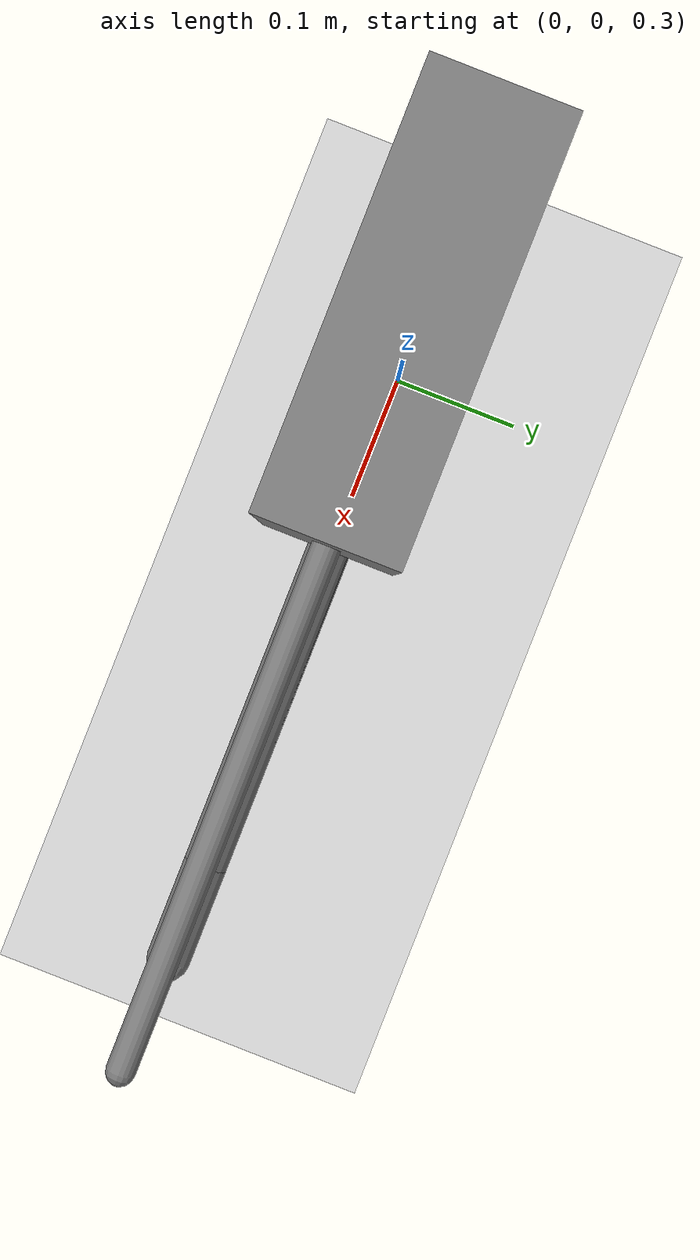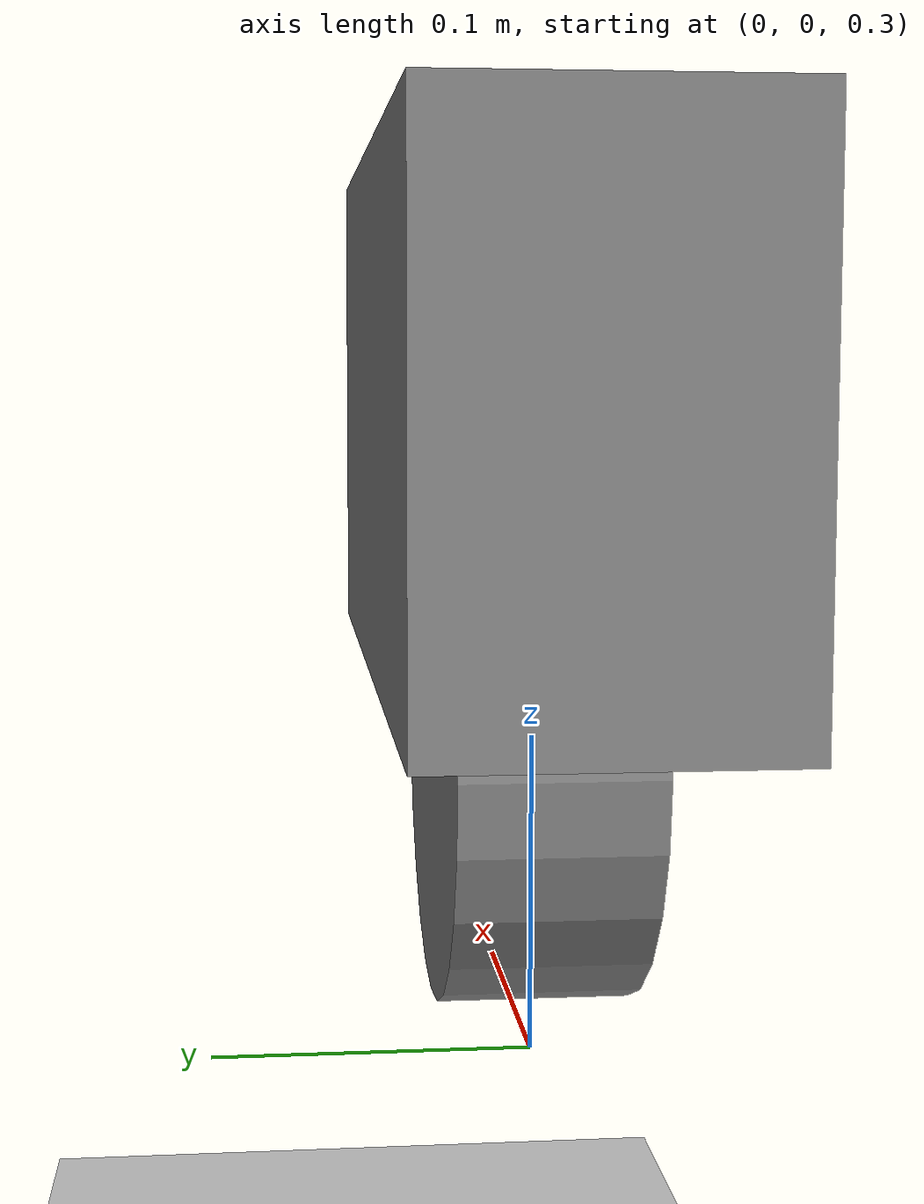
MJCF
<mujoco model="robotv1_planar">
  <compiler angle="radian" coordinate="local"/>
  <option timestep="0.001" integrator="RK4" solver="Newton" gravity="0 0 -9.81"/>

  <default>
    <joint damping="1.0" armature="0.01" limited="true"/>
    <geom contype="1" conaffinity="1" density="500"
          friction="2.0 0.2 0.02" solref="0.01 1" solimp="0.95 0.99 0.001"/>
    <motor ctrlrange="-1 1" ctrllimited="true"/>
  </default>

  <visual>
    <quality shadowsize="2048"/>
    <headlight ambient="0.15 0.15 0.15" diffuse="0.6 0.6 0.6" specular="0.2 0.2 0.2"/>
    <rgba haze="1 1 1 1"/>
    <global azimuth="2.0943951024" elevation="-0.2617993878"/>
  </visual>

  <asset>
    <texture name="floor_tex" type="2d" builtin="checker"
             rgb1="0.92 0.92 0.92" rgb2="0.78 0.78 0.78"
             width="512" height="512"/>
    <material name="floor_mat" texture="floor_tex" texrepeat="6 6"
              reflectance="0.15" shininess="0.8" specular="0.2"/>
  </asset>

  <worldbody>
    <geom name="ground" type="plane" pos="0 0 0" size="5 5 0.1" material="floor_mat"
          friction="2.0 0.2 0.02" condim="3"/>

    <!-- Studio lights -->
    <light name="key" pos="2 2 2.5" dir="-1 -1 -1" diffuse="0.9 0.9 0.9" specular="0.2 0.2 0.2"/>
    <light name="fill" pos="-2 1 1.5" dir="1 -0.5 -0.5" diffuse="0.4 0.4 0.4" specular="0 0 0"/>

    <!-- Planar base: x/z slides + yaw about Y -->
    <body name="torso" pos="0 0 0.4">
      <joint name="base_x" type="slide" axis="1 0 0" range="-2 2"/>
      <joint name="base_z" type="slide" axis="0 0 1" range="0 2"/>
      <joint name="base_yaw" type="hinge" axis="0 1 0" range="-3.1415926536 3.1415926536"/>

      <inertial pos="0 0 0" mass="10" diaginertia="0.2 0.2 0.2"/>
      <geom name="torso_geom" type="box" pos="0 0 0.1" size="0.15 0.05 0.08"/>

      <!-- Reference sites -->
      <site name="H"  pos="0 0 0" size="0.006" rgba="0 0 0 1"/>
      <site name="Bc" pos="0.09893 0 0.11576" size="0.006" rgba="1 0 0 1"/>

      <!-- Upper leg: H -> K -->
      <body name="upper" pos="0 0 0">
        <joint name="hip" type="hinge" axis="0 1 0" range="0.4180063559 1.0653489754"/>
        <inertial pos="0.18 0 0" mass="2" diaginertia="0.05 0.05 0.01"/>

        <site name="K" pos="0.39609 0 0" size="0.006" rgba="0 0 1 1"/>
        <geom name="upper_capsule" type="capsule"
              fromto="0 0 0  0.39609 0 0" size="0.016"/>

        <!-- Lower leg: K -> W, with point C -->
        <body name="lower" pos="0.39609 0 0">
          <joint name="knee" type="hinge" axis="0 1 0" range="-2.1223203704 -0.7283258969"/>
          <inertial pos="0.19 0 0" mass="1.5" diaginertia="0.03 0.03 0.008"/>

          <site name="W" pos="-0.37996 0 0" size="0.006" rgba="0.6 0.6 0.6 1"/>
          <site name="C" pos="0.07506 0 0" size="0.006" rgba="0 1 0 1"/>

          <geom name="lower_capsule" type="capsule"
                fromto="-0.37996 0 0  0.07506 0 0" size="0.016"/>

          <body name="wheel" pos="-0.37996 0 0">
            <joint name="wheel" type="hinge" axis="0 1 0" range="-100000 100000"/>
            <geom name="wheel_geom" type="cylinder" size="0.085 0.03" euler="1.5707963268 0 0"
                  friction="2.0 0.2 0.02" condim="3"/>
          </body>
        </body>
      </body>

      <!-- Rod link: Bc -> C -->
      <body name="rod" pos="0.09893 0 0.11576">
        <joint name="bc" type="hinge" axis="0 1 0" range="-3.1415926536 3.1415926536"/>
        <site name="rod_tip" pos="0.41762 0 0" size="0.006"/>
        <geom name="rod_capsule" type="capsule"
              fromto="0 0 0  0.41762 0 0" size="0.010"/>
      </body>
    </body>
  </worldbody>

  <!-- Close the loop: rod tip coincides with C on lower leg -->
  <equality>
    <connect name="loop_BcC" site1="rod_tip" site2="C"
             solref="0.002 1" solimp="0.95 0.99 0.001"/>
  </equality>

  <actuator>
    <position name="act_hip" joint="hip" kp="40" kv="2"
              ctrllimited="true" ctrlrange="0.4180063559 1.0653489754"/>
    <motor name="act_wheel" joint="wheel" gear="25"/>
  </actuator>

  <keyframe>
    <!-- qpos order: base_x base_z base_yaw hip knee wheel bc -->
    <key name="r0" qpos="0 0.37438 0  0.4180185732 -0.7633162577 0 -2.1510868872"/>
  </keyframe>
</mujoco>
